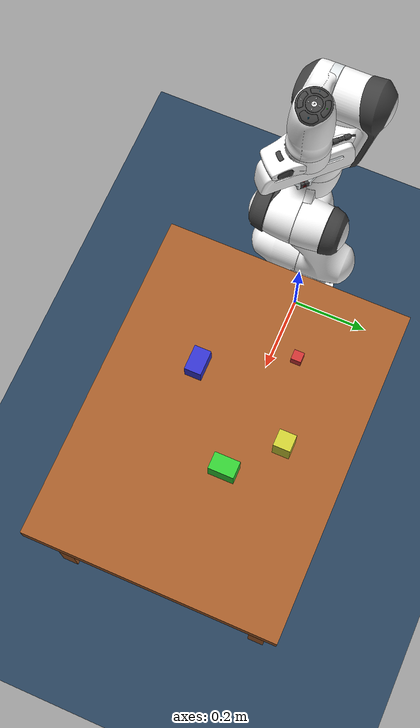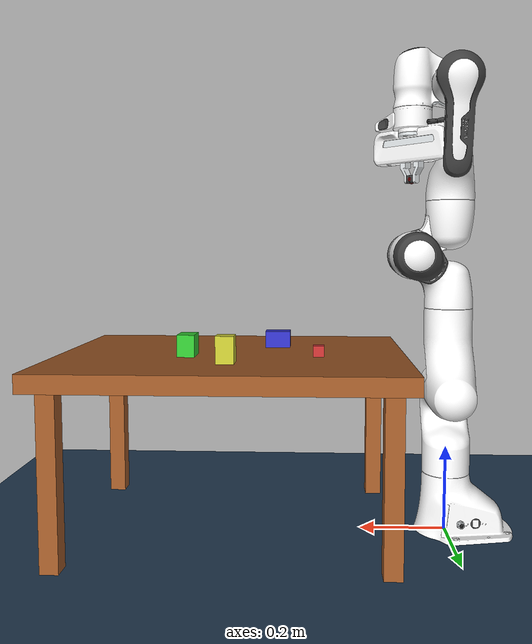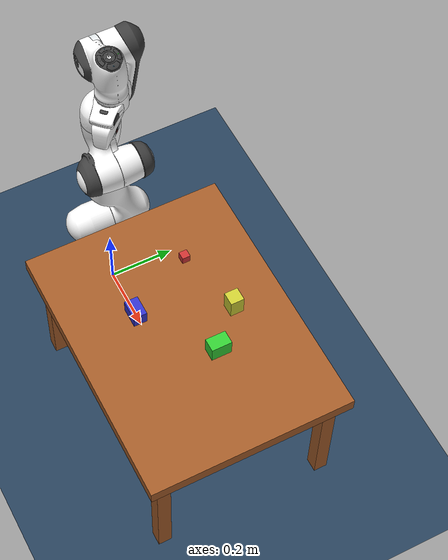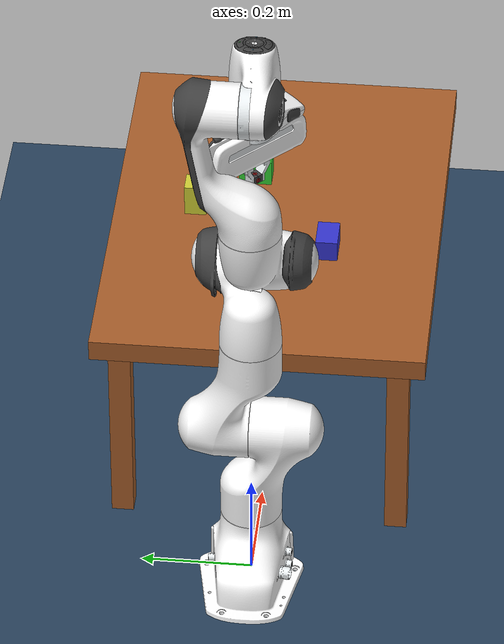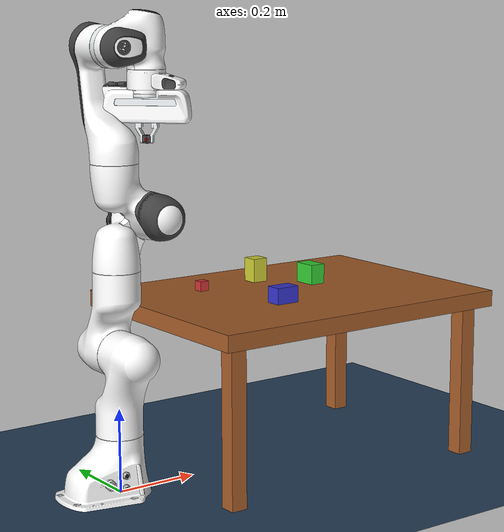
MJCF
<!-- This file describes a scene with the franka panda arm as well as a table with blocks on it-->

<mujoco model="panda scene with obstacles">
  <compiler angle="radian" autolimits="true"/>
  <include file="panda.xml"/>

  <statistic center="0.3 0 0.4" extent="1"/>

  <visual>
    <headlight diffuse="0.6 0.6 0.6" ambient="0.3 0.3 0.3" specular="0 0 0"/>
    <rgba haze="0.15 0.25 0.35 1"/>
    <global azimuth="120" elevation="-20"/>
  </visual>

  <asset>
    <texture type="skybox" builtin="gradient" rgb1="0.3 0.5 0.7" rgb2="0 0 0" width="512" height="3072"/>
    <texture type="2d" name="groundplane" builtin="checker" mark="edge" rgb1="0.2 0.3 0.4" rgb2="0.1 0.2 0.3"
      markrgb="0.8 0.8 0.8" width="300" height="300"/>
    <material name="groundplane" texture="groundplane" texuniform="true" texrepeat="5 5" reflectance="0.2"/>

    <!-- Table material -->
    <texture type="2d" name="wood" builtin="flat" rgb1="0.8 0.6 0.4" width="256" height="256"/>
    <material name="table_material" texture="wood" rgba="0.8 0.6 0.4 1" reflectance="0.1"/>

    <!-- Block materials -->
    <material name="block_red" rgba="0.8 0.2 0.2 1" reflectance="0.1"/>
    <material name="block_blue" rgba="0.2 0.2 0.8 1" reflectance="0.1"/>
    <material name="block_green" rgba="0.2 0.8 0.2 1" reflectance="0.1"/>
    <material name="block_yellow" rgba="0.8 0.8 0.2 1" reflectance="0.1"/>
  </asset>

  <worldbody>
    <light pos="0 0 1.5" dir="0 0 -1" directional="true"/>
    <geom name="floor" size="0 0 0.05" type="plane" material="groundplane"/>

    <!-- Table -->
    <body name="table" pos="0.5 0 0">
      <!-- Table top -->
      <geom name="table_top" type="box" size="0.4 0.3 0.02" pos="0 0 0.4" material="table_material"
            friction="1 0.1 0.001" condim="3"/>

      <!-- Table legs -->
      <geom name="table_leg1" type="box" size="0.02 0.02 0.19" pos="0.35 0.25 0.19" material="table_material"/>
      <geom name="table_leg2" type="box" size="0.02 0.02 0.19" pos="0.35 -0.25 0.19" material="table_material"/>
      <geom name="table_leg3" type="box" size="0.02 0.02 0.19" pos="-0.35 0.25 0.19" material="table_material"/>
      <geom name="table_leg4" type="box" size="0.02 0.02 0.19" pos="-0.35 -0.25 0.19" material="table_material"/>
    </body>

    <!-- mocap="true" for kinematic control (no physics) -->
    <body name="block_red" pos="0.3 0.1 0.44">
      <freejoint name="block_red_free"/>
      <geom name="red_block" type="box" size="0.012 0.012 0.012" material="block_red"
            friction="1 1 1" condim="3" contype="2" conaffinity="1" solref="0.01 1"/>
      <inertial pos="0 0 0" mass="0.1" diaginertia="0.001 0.001 0.001"/>
    </body>

    <body name="block_blue" pos="0.4 -0.1 0.44">
      <freejoint name="block_blue_free"/>
      <geom name="blue_block" type="box" size="0.03 0.02 0.02" material="block_blue"
            friction="1 0.03 0.003" condim="3" contype="2" conaffinity="1" solref="0.01 1"/>
      <inertial pos="0 0 0" mass="0.15" diaginertia="0.001 0.001 0.001"/>
    </body>

    <body name="block_green" pos="0.6 0.05 0.44">
      <freejoint name="block_green_free"/>
      <geom name="green_block" type="box" size="0.02 0.03 0.03" material="block_green"
            friction="1 0.03 0.003" condim="3" contype="2" conaffinity="1" solref="0.01 1"/>
      <inertial pos="0 0 0" mass="0.12" diaginertia="0.001 0.001 0.001"/>
    </body>

    <body name="block_yellow" pos="0.5 0.15 0.44">
      <freejoint name="block_yellow_free"/>
      <geom name="yellow_block" type="box" size="0.02 0.02 0.04" material="block_yellow"
            friction="1 0.03 0.003" condim="3" contype="2" conaffinity="1" solref="0.01 1"/>
      <inertial pos="0 0 0" mass="0.08" diaginertia="0.001 0.001 0.001"/>
    </body>
  </worldbody>

</mujoco>

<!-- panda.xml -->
<mujoco model="panda">
  <compiler angle="radian" meshdir="assets" autolimits="true"/>

  <option integrator="implicitfast"/>

  <default>
    <default class="panda">
      <material specular="0.5" shininess="0.25"/>
      <joint armature="0.1" damping="1" axis="0 0 1" range="-2.8973 2.8973"/>
      <general dyntype="none" biastype="affine" ctrlrange="-2.8973 2.8973" forcerange="-87 87"/>
      <default class="finger">
        <joint axis="0 1 0" type="slide" range="0 0.04"/>
      </default>

      <default class="visual">
        <geom type="mesh" contype="0" conaffinity="0" group="2"/>
      </default>
      <default class="collision">
        <geom type="mesh" group="3"/>
        <default class="fingertip_pad_collision_1">
          <geom type="box" size="0.0085 0.004 0.0085" pos="0 0.0055 0.0445"/>
        </default>
        <default class="fingertip_pad_collision_2">
          <geom type="box" size="0.003 0.002 0.003" pos="0.0055 0.002 0.05"/>
        </default>
        <default class="fingertip_pad_collision_3">
          <geom type="box" size="0.003 0.002 0.003" pos="-0.0055 0.002 0.05"/>
        </default>
        <default class="fingertip_pad_collision_4">
          <geom type="box" size="0.003 0.002 0.0035" pos="0.0055 0.002 0.0395"/>
        </default>
        <default class="fingertip_pad_collision_5">
          <geom type="box" size="0.003 0.002 0.0035" pos="-0.0055 0.002 0.0395"/>
        </default>
      </default>
    </default>
  </default>

  <asset>
    <material class="panda" name="white" rgba="1 1 1 1"/>
    <material class="panda" name="off_white" rgba="0.901961 0.921569 0.929412 1"/>
    <material class="panda" name="black" rgba="0.25 0.25 0.25 1"/>
    <material class="panda" name="green" rgba="0 1 0 1"/>
    <material class="panda" name="light_blue" rgba="0.039216 0.541176 0.780392 1"/>

    <!-- Collision meshes -->
    <mesh name="link0_c" file="link0.stl"/>
    <mesh name="link1_c" file="link1.stl"/>
    <mesh name="link2_c" file="link2.stl"/>
    <mesh name="link3_c" file="link3.stl"/>
    <mesh name="link4_c" file="link4.stl"/>
    <mesh name="link5_c0" file="link5_collision_0.obj"/>
    <mesh name="link5_c1" file="link5_collision_1.obj"/>
    <mesh name="link5_c2" file="link5_collision_2.obj"/>
    <mesh name="link6_c" file="link6.stl"/>
    <mesh name="link7_c" file="link7.stl"/>
    <mesh name="hand_c" file="hand.stl"/>

    <!-- Visual meshes -->
    <mesh file="link0_0.obj"/>
    <mesh file="link0_1.obj"/>
    <mesh file="link0_2.obj"/>
    <mesh file="link0_3.obj"/>
    <mesh file="link0_4.obj"/>
    <mesh file="link0_5.obj"/>
    <mesh file="link0_7.obj"/>
    <mesh file="link0_8.obj"/>
    <mesh file="link0_9.obj"/>
    <mesh file="link0_10.obj"/>
    <mesh file="link0_11.obj"/>
    <mesh file="link1.obj"/>
    <mesh file="link2.obj"/>
    <mesh file="link3_0.obj"/>
    <mesh file="link3_1.obj"/>
    <mesh file="link3_2.obj"/>
    <mesh file="link3_3.obj"/>
    <mesh file="link4_0.obj"/>
    <mesh file="link4_1.obj"/>
    <mesh file="link4_2.obj"/>
    <mesh file="link4_3.obj"/>
    <mesh file="link5_0.obj"/>
    <mesh file="link5_1.obj"/>
    <mesh file="link5_2.obj"/>
    <mesh file="link6_0.obj"/>
    <mesh file="link6_1.obj"/>
    <mesh file="link6_2.obj"/>
    <mesh file="link6_3.obj"/>
    <mesh file="link6_4.obj"/>
    <mesh file="link6_5.obj"/>
    <mesh file="link6_6.obj"/>
    <mesh file="link6_7.obj"/>
    <mesh file="link6_8.obj"/>
    <mesh file="link6_9.obj"/>
    <mesh file="link6_10.obj"/>
    <mesh file="link6_11.obj"/>
    <mesh file="link6_12.obj"/>
    <mesh file="link6_13.obj"/>
    <mesh file="link6_14.obj"/>
    <mesh file="link6_15.obj"/>
    <mesh file="link6_16.obj"/>
    <mesh file="link7_0.obj"/>
    <mesh file="link7_1.obj"/>
    <mesh file="link7_2.obj"/>
    <mesh file="link7_3.obj"/>
    <mesh file="link7_4.obj"/>
    <mesh file="link7_5.obj"/>
    <mesh file="link7_6.obj"/>
    <mesh file="link7_7.obj"/>
    <mesh file="hand_0.obj"/>
    <mesh file="hand_1.obj"/>
    <mesh file="hand_2.obj"/>
    <mesh file="hand_3.obj"/>
    <mesh file="hand_4.obj"/>
    <mesh file="finger_0.obj"/>
    <mesh file="finger_1.obj"/>
  </asset>

  <worldbody>
    <light name="top" pos="0 0 2" mode="trackcom"/>
    <body name="link0" childclass="panda">
      <inertial mass="0.629769" pos="-0.041018 -0.00014 0.049974"
        fullinertia="0.00315 0.00388 0.004285 8.2904e-7 0.00015 8.2299e-6"/>
      <geom mesh="link0_0" material="off_white" class="visual"/>
      <geom mesh="link0_1" material="black" class="visual"/>
      <geom mesh="link0_2" material="off_white" class="visual"/>
      <geom mesh="link0_3" material="black" class="visual"/>
      <geom mesh="link0_4" material="off_white" class="visual"/>
      <geom mesh="link0_5" material="black" class="visual"/>
      <geom mesh="link0_7" material="white" class="visual"/>
      <geom mesh="link0_8" material="white" class="visual"/>
      <geom mesh="link0_9" material="black" class="visual"/>
      <geom mesh="link0_10" material="off_white" class="visual"/>
      <geom mesh="link0_11" material="white" class="visual"/>
      <geom mesh="link0_c" class="collision"/>
      <body name="link1" pos="0 0 0.333">
        <inertial mass="4.970684" pos="0.003875 0.002081 -0.04762"
          fullinertia="0.70337 0.70661 0.0091170 -0.00013900 0.0067720 0.019169"/>
        <joint name="joint1"/>
        <geom material="white" mesh="link1" class="visual"/>
        <geom mesh="link1_c" class="collision"/>
        <body name="link2" quat="1 -1 0 0">
          <inertial mass="0.646926" pos="-0.003141 -0.02872 0.003495"
            fullinertia="0.0079620 2.8110e-2 2.5995e-2 -3.925e-3 1.0254e-2 7.04e-4"/>
          <joint name="joint2" range="-1.7628 1.7628"/>
          <geom material="white" mesh="link2" class="visual"/>
          <geom mesh="link2_c" class="collision"/>
          <body name="link3" pos="0 -0.316 0" quat="1 1 0 0">
            <joint name="joint3"/>
            <inertial mass="3.228604" pos="2.7518e-2 3.9252e-2 -6.6502e-2"
              fullinertia="3.7242e-2 3.6155e-2 1.083e-2 -4.761e-3 -1.1396e-2 -1.2805e-2"/>
            <geom mesh="link3_0" material="white" class="visual"/>
            <geom mesh="link3_1" material="white" class="visual"/>
            <geom mesh="link3_2" material="white" class="visual"/>
            <geom mesh="link3_3" material="black" class="visual"/>
            <geom mesh="link3_c" class="collision"/>
            <body name="link4" pos="0.0825 0 0" quat="1 1 0 0">
              <inertial mass="3.587895" pos="-5.317e-2 1.04419e-1 2.7454e-2"
                fullinertia="2.5853e-2 1.9552e-2 2.8323e-2 7.796e-3 -1.332e-3 8.641e-3"/>
              <joint name="joint4" range="-3.0718 -0.0698"/>
              <geom mesh="link4_0" material="white" class="visual"/>
              <geom mesh="link4_1" material="white" class="visual"/>
              <geom mesh="link4_2" material="black" class="visual"/>
              <geom mesh="link4_3" material="white" class="visual"/>
              <geom mesh="link4_c" class="collision"/>
              <body name="link5" pos="-0.0825 0.384 0" quat="1 -1 0 0">
                <inertial mass="1.225946" pos="-1.1953e-2 4.1065e-2 -3.8437e-2"
                  fullinertia="3.5549e-2 2.9474e-2 8.627e-3 -2.117e-3 -4.037e-3 2.29e-4"/>
                <joint name="joint5"/>
                <geom mesh="link5_0" material="black" class="visual"/>
                <geom mesh="link5_1" material="white" class="visual"/>
                <geom mesh="link5_2" material="white" class="visual"/>
                <geom mesh="link5_c0" class="collision"/>
                <geom mesh="link5_c1" class="collision"/>
                <geom mesh="link5_c2" class="collision"/>
                <body name="link6" quat="1 1 0 0">
                  <inertial mass="1.666555" pos="6.0149e-2 -1.4117e-2 -1.0517e-2"
                    fullinertia="1.964e-3 4.354e-3 5.433e-3 1.09e-4 -1.158e-3 3.41e-4"/>
                  <joint name="joint6" range="-0.0175 3.7525"/>
                  <geom mesh="link6_0" material="off_white" class="visual"/>
                  <geom mesh="link6_1" material="white" class="visual"/>
                  <geom mesh="link6_2" material="black" class="visual"/>
                  <geom mesh="link6_3" material="white" class="visual"/>
                  <geom mesh="link6_4" material="white" class="visual"/>
                  <geom mesh="link6_5" material="white" class="visual"/>
                  <geom mesh="link6_6" material="white" class="visual"/>
                  <geom mesh="link6_7" material="light_blue" class="visual"/>
                  <geom mesh="link6_8" material="light_blue" class="visual"/>
                  <geom mesh="link6_9" material="black" class="visual"/>
                  <geom mesh="link6_10" material="black" class="visual"/>
                  <geom mesh="link6_11" material="white" class="visual"/>
                  <geom mesh="link6_12" material="green" class="visual"/>
                  <geom mesh="link6_13" material="white" class="visual"/>
                  <geom mesh="link6_14" material="black" class="visual"/>
                  <geom mesh="link6_15" material="black" class="visual"/>
                  <geom mesh="link6_16" material="white" class="visual"/>
                  <geom mesh="link6_c" class="collision"/>
                  <body name="link7" pos="0.088 0 0" quat="1 1 0 0">
                    <inertial mass="7.35522e-01" pos="1.0517e-2 -4.252e-3 6.1597e-2"
                      fullinertia="1.2516e-2 1.0027e-2 4.815e-3 -4.28e-4 -1.196e-3 -7.41e-4"/>
                    <joint name="joint7"/>
                    <geom mesh="link7_0" material="white" class="visual"/>
                    <geom mesh="link7_1" material="black" class="visual"/>
                    <geom mesh="link7_2" material="black" class="visual"/>
                    <geom mesh="link7_3" material="black" class="visual"/>
                    <geom mesh="link7_4" material="black" class="visual"/>
                    <geom mesh="link7_5" material="black" class="visual"/>
                    <geom mesh="link7_6" material="black" class="visual"/>
                    <geom mesh="link7_7" material="white" class="visual"/>
                    <geom mesh="link7_c" class="collision"/>
                    <body name="hand" pos="0 0 0.107" quat="0.9238795 0 0 -0.3826834">
                      <inertial mass="0.73" pos="-0.01 0 0.03" diaginertia="0.001 0.0025 0.0017"/>
                      <geom mesh="hand_0" material="off_white" class="visual"/>
                      <geom mesh="hand_1" material="black" class="visual"/>
                      <geom mesh="hand_2" material="black" class="visual"/>
                      <geom mesh="hand_3" material="white" class="visual"/>
                      <geom mesh="hand_4" material="off_white" class="visual"/>
                      <geom mesh="hand_c" class="collision"/>
                      <site name="ee_site" size="0.01" pos="0 0 0.10375" rgba="1 0 0 0.5" group="1"/>
                      <body name="left_finger" pos="0 0 0.0584">
                        <inertial mass="0.015" pos="0 0 0" diaginertia="2.375e-6 2.375e-6 7.5e-7"/>
                        <joint name="finger_joint1" class="finger"/>
                        <geom mesh="finger_0" material="off_white" class="visual"/>
                        <geom mesh="finger_1" material="black" class="visual"/>
                        <geom mesh="finger_0" class="collision"/>
                        <geom class="fingertip_pad_collision_1"/>
                        <geom class="fingertip_pad_collision_2"/>
                        <geom class="fingertip_pad_collision_3"/>
                        <geom class="fingertip_pad_collision_4"/>
                        <geom class="fingertip_pad_collision_5"/>
                      </body>
                      <body name="right_finger" pos="0 0 0.0584" quat="0 0 0 1">
                        <inertial mass="0.015" pos="0 0 0" diaginertia="2.375e-6 2.375e-6 7.5e-7"/>
                        <joint name="finger_joint2" class="finger"/>
                        <geom mesh="finger_0" material="off_white" class="visual"/>
                        <geom mesh="finger_1" material="black" class="visual"/>
                        <geom mesh="finger_0" class="collision"/>
                        <geom class="fingertip_pad_collision_1"/>
                        <geom class="fingertip_pad_collision_2"/>
                        <geom class="fingertip_pad_collision_3"/>
                        <geom class="fingertip_pad_collision_4"/>
                        <geom class="fingertip_pad_collision_5"/>
                      </body>
                    </body>
                  </body>
                </body>
              </body>
            </body>
          </body>
        </body>
      </body>
    </body>
  </worldbody>

  <tendon>
    <fixed name="split">
      <joint joint="finger_joint1" coef="0.5"/>
      <joint joint="finger_joint2" coef="0.5"/>
    </fixed>
  </tendon>

  <equality>
    <joint joint1="finger_joint1" joint2="finger_joint2" solimp="0.95 0.99 0.001" solref="0.005 1"/>
  </equality>

  <actuator>
    <general class="panda" name="actuator1" joint="joint1" gainprm="4500" biasprm="0 -4500 -450"/>
    <general class="panda" name="actuator2" joint="joint2" gainprm="4500" biasprm="0 -4500 -450"
      ctrlrange="-1.7628 1.7628"/>
    <general class="panda" name="actuator3" joint="joint3" gainprm="3500" biasprm="0 -3500 -350"/>
    <general class="panda" name="actuator4" joint="joint4" gainprm="3500" biasprm="0 -3500 -350"
      ctrlrange="-3.0718 -0.0698"/>
    <general class="panda" name="actuator5" joint="joint5" gainprm="2000" biasprm="0 -2000 -200" forcerange="-12 12"/>
    <general class="panda" name="actuator6" joint="joint6" gainprm="2000" biasprm="0 -2000 -200" forcerange="-12 12"
      ctrlrange="-0.0175 3.7525"/>
    <general class="panda" name="actuator7" joint="joint7" gainprm="2000" biasprm="0 -2000 -200" forcerange="-12 12"/>
    <!-- Remap original ctrlrange (0, 0.04) to (0, 255): 0.04 * 100 / 255 = 0.01568627451 -->
    <general class="panda" name="actuator8" tendon="split" forcerange="-100 100" ctrlrange="0 255"
      gainprm="0.01568627451 0 0" biasprm="0 -100 -10"/>
  </actuator>

  <!-- Override keyframe to include block positions (each freejoint adds 7 DoFs: 3 pos + 4 quat) -->
  <keyframe>
    <key name="home"
         qpos="0 0 0 -1.57079 0 1.57079 -0.7853 0.04 0.04
               0.3 0.1 0.44 1 0 0 0
               0.4 -0.1 0.44 1 0 0 0
               0.6 0.05 0.44 1 0 0 0
               0.5 0.15 0.44 1 0 0 0"
         ctrl="0 0 0 -1.57079 0 1.57079 -0.7853 255"/>
  </keyframe>
</mujoco>
